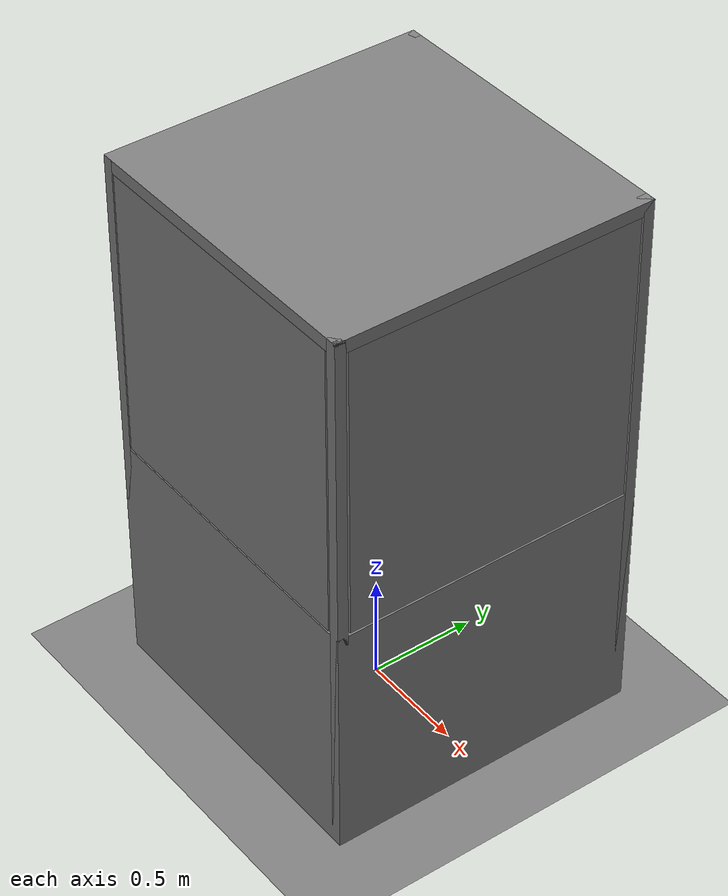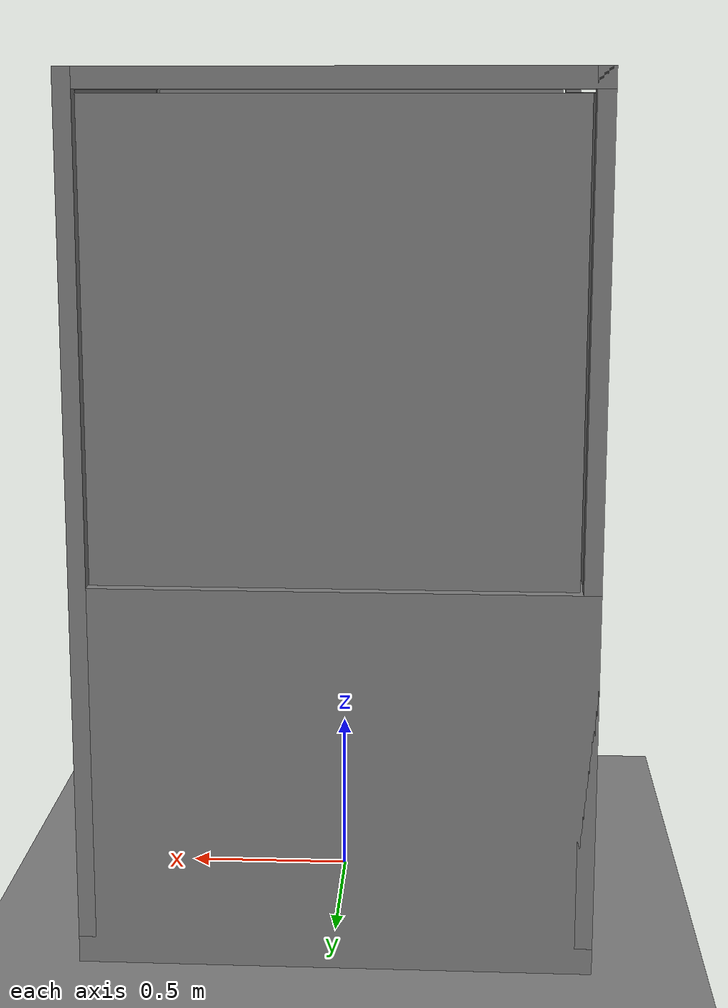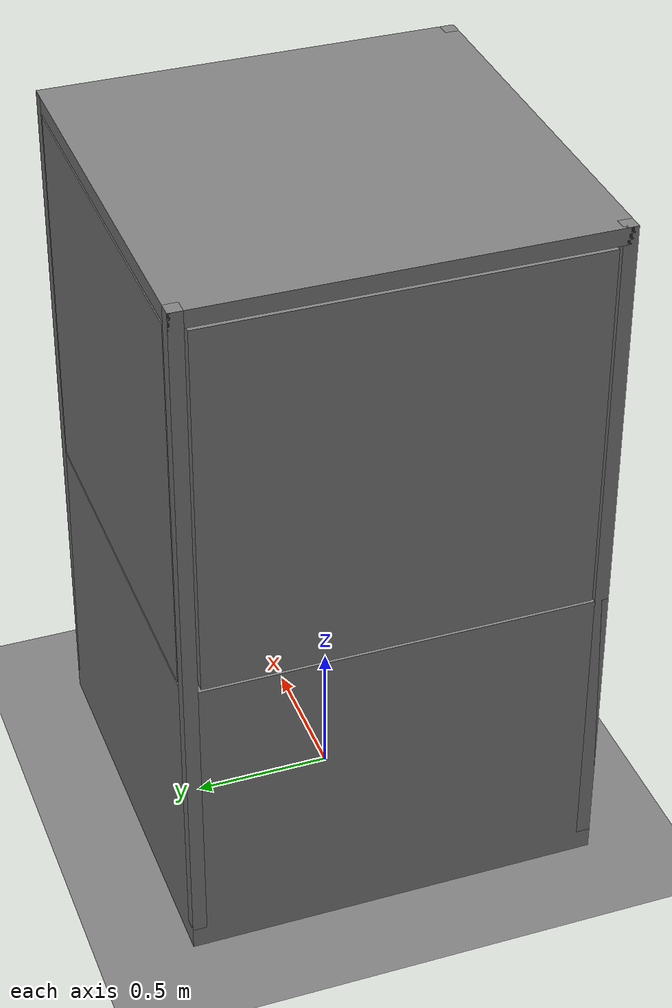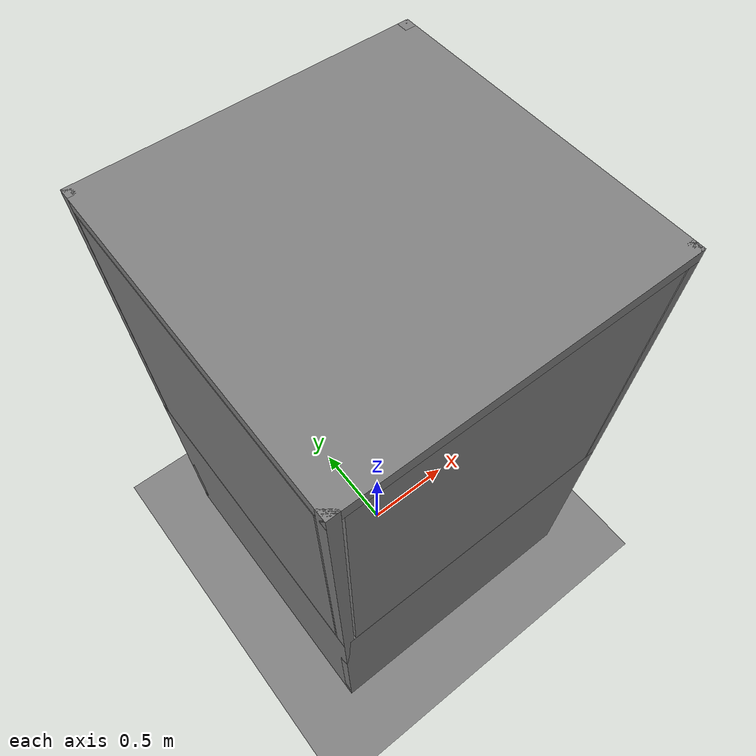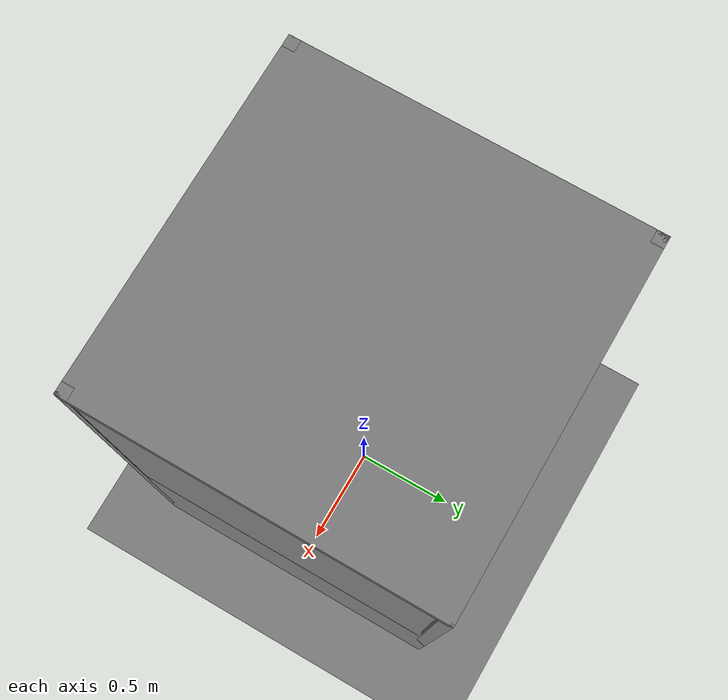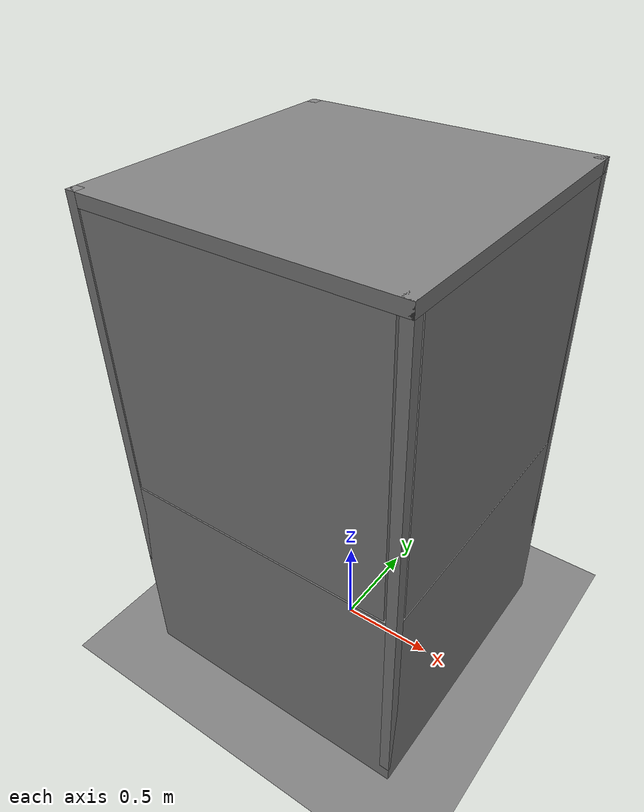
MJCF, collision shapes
<mujoco model="aic_world">
  <compiler angle="radian" />

  <option gravity="0 0 -9.8" magnetic="5.5645e-06 2.28758e-05 -4.23884e-05" />

  <visual>
    <headlight ambient="0.05 0.05 0.05" diffuse="0.15 0.15 0.15" specular="0.1 0.1 0.1" />
  </visual>

  <default>
    <default class="world_default" />
    <default class="cable_default">
      <joint damping="2.0" armature="0.1" />
    </default>
  </default>

  <extension>
    <plugin plugin="mujoco.elasticity.cable">
      <instance name="composite">
        <config key="twist" value="1e2" />
        <config key="bend" value="4e1" />
      </instance>
    </plugin>
  </extension>

  <asset>
    <texture type="2d" colorspace="linear" name="texture_3cfd66d2e9d880eae3d6e7923ec9058d874bf1526844466939fc4924d98ff9b9_floor_visual_Plane" file="meshes/floor_visual__Plane.png" />
    <texture type="2d" colorspace="linear" name="texture_64e61b65f045552ba26a6ad52be1054f951feb31fe90869f7d202e8045dc22e6_sc_plug_visual_merged_0" file="meshes/sc_plug_visual__merged_0.png" />
    <texture type="2d" colorspace="linear" name="texture_49bcaba7dbdb7d3142691518ed2731a8b4b7bed5e5dd55a10defd679994a8fb5_lc_plug_visual_merged_0" file="meshes/lc_plug_visual__merged_0.png" />
    <texture type="2d" colorspace="linear" name="texture_4e46908e7d54f1b9f4b24d75a3e64fbc26cc8ba53b13e641c435298d0fee7478_sfp_module_visual_Body.005" file="meshes/sfp_module_visual__Body.005.png" />
    <texture type="2d" colorspace="linear" name="texture_4e46908e7d54f1b9f4b24d75a3e64fbc26cc8ba53b13e641c435298d0fee7478_sfp_module_visual_Body.005_1" file="meshes/sfp_module_visual__Body.005_1.png" />
    <texture type="2d" colorspace="linear" name="texture_d1b04fad6d29ff6a8ddafafe01f51e4115506104619cde448122a63197c4db36_sc_port_visual_FOA-005A_3D_v1.006" file="meshes/sc_port_visual__FOA-005A_3D_v1.006.png" />
    <texture type="2d" colorspace="linear" name="texture_11ca22ec5bc4bf3254ee393918b3b659d90ac573596f8ddff3835610b068bcee_nic_card_visual_merged_0" file="meshes/nic_card_visual__merged_0.png" />
    <texture type="2d" colorspace="linear" name="texture_11ca22ec5bc4bf3254ee393918b3b659d90ac573596f8ddff3835610b068bcee_nic_card_visual_merged_1" file="meshes/nic_card_visual__merged_1.png" />
    <material name="material_d3a88c2c9b67693c0b83a473c736f84a8297c1036d4dce4e6c4e840aec16baa7_enclosure_visual_V1014952.001" class="world_default" shininess="30" rgba="0.290196 0.290196 0.290196 1" />
    <material name="material_d3a88c2c9b67693c0b83a473c736f84a8297c1036d4dce4e6c4e840aec16baa7_enclosure_visual_V1014952.001_1" class="world_default" shininess="30" rgba="0.129412 0.129412 0.133333 1" />
    <material name="material_d3a88c2c9b67693c0b83a473c736f84a8297c1036d4dce4e6c4e840aec16baa7_light_visual_Plane.001" class="world_default" shininess="30" rgba="0.5 0.5 0.5 1" />
    <material name="material_3cfd66d2e9d880eae3d6e7923ec9058d874bf1526844466939fc4924d98ff9b9_floor_visual_Plane" class="world_default" texture="texture_3cfd66d2e9d880eae3d6e7923ec9058d874bf1526844466939fc4924d98ff9b9_floor_visual_Plane" shininess="30" rgba="0.5 0.5 0.5 1" />
    <material name="material_3cfd66d2e9d880eae3d6e7923ec9058d874bf1526844466939fc4924d98ff9b9_walls_visual_Curve.001" class="world_default" shininess="30" rgba="0.0196078 0.0196078 0.0196078 1" />
    <material name="material_3cfd66d2e9d880eae3d6e7923ec9058d874bf1526844466939fc4924d98ff9b9_walls_visual_merged_1" class="world_default" shininess="30" rgba="0.262745 0.262745 0.262745 1" />
    <material name="material_3cfd66d2e9d880eae3d6e7923ec9058d874bf1526844466939fc4924d98ff9b9_walls_visual_Plane.003_1" class="world_default" shininess="30" rgba="0.8 0.8 0.8 1" />
    <material name="material_3cfd66d2e9d880eae3d6e7923ec9058d874bf1526844466939fc4924d98ff9b9_walls_visual_Plane.002" class="world_default" shininess="30" rgba="0.207843 0.207843 0.207843 1" />
    <material name="material_64e61b65f045552ba26a6ad52be1054f951feb31fe90869f7d202e8045dc22e6_sc_plug_visual_merged_0" class="world_default" texture="texture_64e61b65f045552ba26a6ad52be1054f951feb31fe90869f7d202e8045dc22e6_sc_plug_visual_merged_0" shininess="30" rgba="0.5 0.5 0.5 1" />
    <material name="material_49bcaba7dbdb7d3142691518ed2731a8b4b7bed5e5dd55a10defd679994a8fb5_lc_plug_visual_merged_0" class="world_default" texture="texture_49bcaba7dbdb7d3142691518ed2731a8b4b7bed5e5dd55a10defd679994a8fb5_lc_plug_visual_merged_0" shininess="30" rgba="0.5 0.5 0.5 1" />
    <material name="material_4e46908e7d54f1b9f4b24d75a3e64fbc26cc8ba53b13e641c435298d0fee7478_sfp_module_visual_Body.005" class="world_default" texture="texture_4e46908e7d54f1b9f4b24d75a3e64fbc26cc8ba53b13e641c435298d0fee7478_sfp_module_visual_Body.005" shininess="30" rgba="0.5 0.5 0.5 1" />
    <material name="material_4e46908e7d54f1b9f4b24d75a3e64fbc26cc8ba53b13e641c435298d0fee7478_sfp_module_visual_Body.005_1" class="world_default" texture="texture_4e46908e7d54f1b9f4b24d75a3e64fbc26cc8ba53b13e641c435298d0fee7478_sfp_module_visual_Body.005_1" shininess="30" rgba="0.5 0.5 0.5 1" />
    <material name="material_5d10b2ccf9ef8263b111a7e55a6b5dcf9c2d68105c468901e801678ea93c82ec_base_visual_ISO_4762_-_M3_x_8.019" class="world_default" shininess="30" rgba="0.0352941 0.0352941 0.0313726 1" />
    <material name="material_5d10b2ccf9ef8263b111a7e55a6b5dcf9c2d68105c468901e801678ea93c82ec_base_visual_ISO_4762_-_M3_x_8.019_1" class="world_default" shininess="30" rgba="0.0313726 0.0313726 0.0313726 1" />
    <material name="material_5d10b2ccf9ef8263b111a7e55a6b5dcf9c2d68105c468901e801678ea93c82ec_base_visual_ISO_4762_-_M3_x_8.019_2" class="world_default" shininess="30" rgba="0.215686 0 0.215686 1" />
    <material name="material_39fd7e74cdb4d52c9d01c8de21359f749ea1bfe7a1f2136fc19f2d9a98855c02_sc_mount_visual_ISO_4762_-_M2_x_8.040" class="world_default" shininess="30" rgba="0.0352941 0.0352941 0.0313726 1" />
    <material name="material_39fd7e74cdb4d52c9d01c8de21359f749ea1bfe7a1f2136fc19f2d9a98855c02_sc_mount_visual_ISO_4762_-_M2_x_8.040_1" class="world_default" shininess="30" rgba="0.0313726 0.0313726 0.0313726 1" />
    <material name="material_a868460f64b676f0077827b48115680161bdef32d67cb4691cdc6946bb896345_sfp_mount_visual_ISO_4762_-_M2_x_8.011" class="world_default" shininess="30" rgba="0.0313726 0.0313726 0.0313726 1" />
    <material name="material_a868460f64b676f0077827b48115680161bdef32d67cb4691cdc6946bb896345_sfp_mount_visual_ISO_4762_-_M2_x_8.011_1" class="world_default" shininess="30" rgba="0.0352941 0.0352941 0.0313726 1" />
    <material name="material_d1b04fad6d29ff6a8ddafafe01f51e4115506104619cde448122a63197c4db36_sc_port_visual_FOA-005A_3D_v1.006" class="world_default" texture="texture_d1b04fad6d29ff6a8ddafafe01f51e4115506104619cde448122a63197c4db36_sc_port_visual_FOA-005A_3D_v1.006" shininess="30" rgba="0.5 0.5 0.5 1" />
    <material name="material_d1b04fad6d29ff6a8ddafafe01f51e4115506104619cde448122a63197c4db36_sc_port_visual_merged_1" class="world_default" shininess="30" rgba="0.0352941 0.0352941 0.0313726 1" />
    <material name="material_d1b04fad6d29ff6a8ddafafe01f51e4115506104619cde448122a63197c4db36_sc_port_visual_merged_2" class="world_default" shininess="30" rgba="0.0313726 0.0313726 0.0313726 1" />
    <material name="material_11ca22ec5bc4bf3254ee393918b3b659d90ac573596f8ddff3835610b068bcee_nic_card_mount_visual_ISO_4762_-_M2_x_8.054" class="world_default" shininess="30" rgba="0.0352941 0.0352941 0.0313726 1" />
    <material name="material_11ca22ec5bc4bf3254ee393918b3b659d90ac573596f8ddff3835610b068bcee_nic_card_mount_visual_ISO_4762_-_M2_x_8.054_1" class="world_default" shininess="30" rgba="0.0313726 0.0313726 0.0313726 1" />
    <material name="material_11ca22ec5bc4bf3254ee393918b3b659d90ac573596f8ddff3835610b068bcee_nic_card_visual_merged_0" class="world_default" texture="texture_11ca22ec5bc4bf3254ee393918b3b659d90ac573596f8ddff3835610b068bcee_nic_card_visual_merged_0" shininess="30" rgba="0.5 0.5 0.5 1" />
    <material name="material_11ca22ec5bc4bf3254ee393918b3b659d90ac573596f8ddff3835610b068bcee_nic_card_visual_merged_1" class="world_default" texture="texture_11ca22ec5bc4bf3254ee393918b3b659d90ac573596f8ddff3835610b068bcee_nic_card_visual_merged_1" shininess="30" rgba="0.5 0.5 0.5 1" />
    <material name="material_11ca22ec5bc4bf3254ee393918b3b659d90ac573596f8ddff3835610b068bcee_nic_card_visual_Plane.029" class="world_default" shininess="30" rgba="0.0235294 0.0392157 0.0117647 1" />
    <material name="material_11ca22ec5bc4bf3254ee393918b3b659d90ac573596f8ddff3835610b068bcee_nic_card_visual_Cube.007" class="world_default" shininess="30" rgba="0 0 0 1" />
    <mesh name="d3a88c2c9b67693c0b83a473c736f84a8297c1036d4dce4e6c4e840aec16baa7_enclosure_visual_V1014952.001" class="world_default" content_type="model/obj" file="meshes/enclosure_visual__V1014952.001.obj" inertia="shell" />
    <mesh name="d3a88c2c9b67693c0b83a473c736f84a8297c1036d4dce4e6c4e840aec16baa7_enclosure_visual_V1014952.001_1" class="world_default" content_type="model/obj" file="meshes/enclosure_visual__V1014952.001_1.obj" inertia="shell" />
    <mesh name="d3a88c2c9b67693c0b83a473c736f84a8297c1036d4dce4e6c4e840aec16baa7_light_visual_Plane.001" class="world_default" content_type="model/obj" file="meshes/light_visual__Plane.001.obj" inertia="shell" />
    <mesh name="3cfd66d2e9d880eae3d6e7923ec9058d874bf1526844466939fc4924d98ff9b9_floor_visual_Plane" class="world_default" content_type="model/obj" file="meshes/floor_visual__Plane.obj" inertia="shell" />
    <mesh name="3cfd66d2e9d880eae3d6e7923ec9058d874bf1526844466939fc4924d98ff9b9_walls_visual_Curve.001" class="world_default" content_type="model/obj" file="meshes/walls_visual__Curve.001.obj" inertia="shell" />
    <mesh name="3cfd66d2e9d880eae3d6e7923ec9058d874bf1526844466939fc4924d98ff9b9_walls_visual_merged_1" class="world_default" content_type="model/obj" file="meshes/walls_visual__merged_1.obj" inertia="shell" />
    <mesh name="3cfd66d2e9d880eae3d6e7923ec9058d874bf1526844466939fc4924d98ff9b9_walls_visual_Plane.003_1" class="world_default" content_type="model/obj" file="meshes/walls_visual__Plane.003_1.obj" inertia="shell" />
    <mesh name="3cfd66d2e9d880eae3d6e7923ec9058d874bf1526844466939fc4924d98ff9b9_walls_visual_Plane.002" class="world_default" content_type="model/obj" file="meshes/walls_visual__Plane.002.obj" inertia="shell" />
    <mesh name="64e61b65f045552ba26a6ad52be1054f951feb31fe90869f7d202e8045dc22e6_sc_plug_visual_merged_0" class="world_default" content_type="model/obj" file="meshes/sc_plug_visual__merged_0.obj" inertia="shell" />
    <mesh name="49bcaba7dbdb7d3142691518ed2731a8b4b7bed5e5dd55a10defd679994a8fb5_lc_plug_visual_merged_0" class="world_default" content_type="model/obj" file="meshes/lc_plug_visual__merged_0.obj" inertia="shell" />
    <mesh name="4e46908e7d54f1b9f4b24d75a3e64fbc26cc8ba53b13e641c435298d0fee7478_sfp_module_visual_Body.005" class="world_default" content_type="model/obj" file="meshes/sfp_module_visual__Body.005.obj" inertia="shell" />
    <mesh name="4e46908e7d54f1b9f4b24d75a3e64fbc26cc8ba53b13e641c435298d0fee7478_sfp_module_visual_Body.005_1" class="world_default" content_type="model/obj" file="meshes/sfp_module_visual__Body.005_1.obj" inertia="shell" />
    <mesh name="5d10b2ccf9ef8263b111a7e55a6b5dcf9c2d68105c468901e801678ea93c82ec_base_visual_ISO_4762_-_M3_x_8.019" class="world_default" content_type="model/obj" file="meshes/base_visual__ISO_4762_-_M3_x_8.019.obj" inertia="shell" />
    <mesh name="5d10b2ccf9ef8263b111a7e55a6b5dcf9c2d68105c468901e801678ea93c82ec_base_visual_ISO_4762_-_M3_x_8.019_1" class="world_default" content_type="model/obj" file="meshes/base_visual__ISO_4762_-_M3_x_8.019_1.obj" inertia="shell" />
    <mesh name="5d10b2ccf9ef8263b111a7e55a6b5dcf9c2d68105c468901e801678ea93c82ec_base_visual_ISO_4762_-_M3_x_8.019_2" class="world_default" content_type="model/obj" file="meshes/base_visual__ISO_4762_-_M3_x_8.019_2.obj" inertia="shell" />
    <mesh name="39fd7e74cdb4d52c9d01c8de21359f749ea1bfe7a1f2136fc19f2d9a98855c02_sc_mount_visual_ISO_4762_-_M2_x_8.040" class="world_default" content_type="model/obj" file="meshes/sc_mount_visual__ISO_4762_-_M2_x_8.040.obj" inertia="shell" />
    <mesh name="39fd7e74cdb4d52c9d01c8de21359f749ea1bfe7a1f2136fc19f2d9a98855c02_sc_mount_visual_ISO_4762_-_M2_x_8.040_1" class="world_default" content_type="model/obj" file="meshes/sc_mount_visual__ISO_4762_-_M2_x_8.040_1.obj" inertia="shell" />
    <mesh name="a868460f64b676f0077827b48115680161bdef32d67cb4691cdc6946bb896345_sfp_mount_visual_ISO_4762_-_M2_x_8.011" class="world_default" content_type="model/obj" file="meshes/sfp_mount_visual__ISO_4762_-_M2_x_8.011.obj" inertia="shell" />
    <mesh name="a868460f64b676f0077827b48115680161bdef32d67cb4691cdc6946bb896345_sfp_mount_visual_ISO_4762_-_M2_x_8.011_1" class="world_default" content_type="model/obj" file="meshes/sfp_mount_visual__ISO_4762_-_M2_x_8.011_1.obj" inertia="shell" />
    <mesh name="d1b04fad6d29ff6a8ddafafe01f51e4115506104619cde448122a63197c4db36_sc_port_visual_FOA-005A_3D_v1.006" class="world_default" content_type="model/obj" file="meshes/sc_port_visual__FOA-005A_3D_v1.006.obj" inertia="shell" />
    <mesh name="d1b04fad6d29ff6a8ddafafe01f51e4115506104619cde448122a63197c4db36_sc_port_visual_merged_1" class="world_default" content_type="model/obj" file="meshes/sc_port_visual__merged_1.obj" inertia="shell" />
    <mesh name="d1b04fad6d29ff6a8ddafafe01f51e4115506104619cde448122a63197c4db36_sc_port_visual_merged_2" class="world_default" content_type="model/obj" file="meshes/sc_port_visual__merged_2.obj" inertia="shell" />
    <mesh name="11ca22ec5bc4bf3254ee393918b3b659d90ac573596f8ddff3835610b068bcee_nic_card_mount_visual_ISO_4762_-_M2_x_8.054" class="world_default" content_type="model/obj" file="meshes/nic_card_mount_visual__ISO_4762_-_M2_x_8.054.obj" inertia="shell" />
    <mesh name="11ca22ec5bc4bf3254ee393918b3b659d90ac573596f8ddff3835610b068bcee_nic_card_mount_visual_ISO_4762_-_M2_x_8.054_1" class="world_default" content_type="model/obj" file="meshes/nic_card_mount_visual__ISO_4762_-_M2_x_8.054_1.obj" inertia="shell" />
    <mesh name="11ca22ec5bc4bf3254ee393918b3b659d90ac573596f8ddff3835610b068bcee_nic_card_visual_merged_0" class="world_default" content_type="model/obj" file="meshes/nic_card_visual__merged_0.obj" inertia="shell" />
    <mesh name="11ca22ec5bc4bf3254ee393918b3b659d90ac573596f8ddff3835610b068bcee_nic_card_visual_merged_1" class="world_default" content_type="model/obj" file="meshes/nic_card_visual__merged_1.obj" inertia="shell" />
    <mesh name="11ca22ec5bc4bf3254ee393918b3b659d90ac573596f8ddff3835610b068bcee_nic_card_visual_Plane.029" class="world_default" content_type="model/obj" file="meshes/nic_card_visual__Plane.029.obj" inertia="shell" />
    <mesh name="11ca22ec5bc4bf3254ee393918b3b659d90ac573596f8ddff3835610b068bcee_nic_card_visual_Cube.007" class="world_default" content_type="model/obj" file="meshes/nic_card_visual__Cube.007.obj" inertia="shell" />
  </asset>

  <worldbody>
    <light name="enclosure_light" class="world_default" pos="0 0 2.5" dir="0 0 -1" intensity="0.4" range="2" attenuation="1 0.01 0.001" cutoff="114.592" exponent="0.993023" diffuse="1 1 1" specular="0.1 0.1 0.1" />
    <light name="ceiling_01" class="world_default" pos="2 2 6" dir="0 0 -1" intensity="2" range="9" castshadow="false" attenuation="1 0.01 0.001" cutoff="360" diffuse="1 1 1" specular="0.1 0.1 0.1" />
    <light name="ceiling_02" class="world_default" pos="-2 -2 6" dir="0 0 -1" intensity="2" range="9" castshadow="false" attenuation="1 0.01 0.001" cutoff="360" diffuse="1 1 1" specular="0.1 0.1 0.1" />
    <body name="enclosure_link">
      <inertial pos="0 0 0" mass="1" diaginertia="1 1 1" />
      <geom name="v1015026001_collider_box" class="world_default" size="0.75 0.569492 0.75" pos="-0.010998 0.009283 0.569706" quat="-1.22475e-07 1.22474e-07 -0.707107 -0.707107" type="box" group="3" contype="0" conaffinity="0" />
      <geom name="v1015028001_collider_box" class="world_default" size="0.0254 0.0254 1.25" pos="0.713602 0.733883 1.3292" quat="1.73205e-07 0 0 -1" type="box" group="3" contype="0" conaffinity="0" />
      <geom name="v1015013001_collider_box" class="world_default" size="0.0304 0.75 0.75" pos="-0.010998 0.009283 2.5488" quat="0.707107 0 -0.707107 0" type="box" group="3" contype="0" conaffinity="0" />
      <geom name="v1015027_collider_box" class="world_default" size="0.0254 0.0254 1.25" pos="-0.735598 0.733883 1.3292" quat="1.73205e-07 0 0 -1" type="box" group="3" contype="0" conaffinity="0" />
      <geom name="v1015029_collider_box" class="world_default" size="0.0254 0.0254 1.25" pos="-0.735598 -0.715317 1.3292" quat="0 1.73205e-07 -1 -1.73205e-07" type="box" group="3" contype="0" conaffinity="0" />
      <geom name="v1015030_collider_box" class="world_default" size="0.0254 0.0254 1.25" pos="0.713602 -0.715317 1.3292" quat="1.73205e-07 0 0 -1" type="box" group="3" contype="0" conaffinity="0" />
      <geom name="enclosure_visual" class="world_default" type="mesh" contype="0" conaffinity="0" material="material_d3a88c2c9b67693c0b83a473c736f84a8297c1036d4dce4e6c4e840aec16baa7_enclosure_visual_V1014952.001" mesh="d3a88c2c9b67693c0b83a473c736f84a8297c1036d4dce4e6c4e840aec16baa7_enclosure_visual_V1014952.001" />
      <geom name="enclosure_visual_0" class="world_default" type="mesh" contype="0" conaffinity="0" material="material_d3a88c2c9b67693c0b83a473c736f84a8297c1036d4dce4e6c4e840aec16baa7_enclosure_visual_V1014952.001_1" mesh="d3a88c2c9b67693c0b83a473c736f84a8297c1036d4dce4e6c4e840aec16baa7_enclosure_visual_V1014952.001_1" />
      <geom name="light_visual" class="world_default" type="mesh" contype="0" conaffinity="0" material="material_d3a88c2c9b67693c0b83a473c736f84a8297c1036d4dce4e6c4e840aec16baa7_light_visual_Plane.001" mesh="d3a88c2c9b67693c0b83a473c736f84a8297c1036d4dce4e6c4e840aec16baa7_light_visual_Plane.001" />
    </body>
    <body name="enclosure_walls_link">
      <inertial pos="0 0 0" mass="1" diaginertia="1 1 1" />
      <geom name="v1015062006_collider_box" class="world_default" size="0.0250005 0.6796 0.6892" pos="-0.010998 0.734284 1.8288" quat="0.5 0.5 -0.5 -0.5" type="box" group="3" contype="0" conaffinity="0" />
      <geom name="v1015062005_collider_box" class="world_default" size="0.6892 0.6796 0.025" pos="-0.735998 0.009283 1.8288" quat="0.5 0.5 -0.5 -0.5" type="box" group="3" contype="0" conaffinity="0" />
      <geom name="v1015062007_collider_box" class="world_default" size="0.025 0.6846 0.6892" pos="-0.010998 -0.715717 1.8338" quat="0.5 0.5 -0.5 -0.5" type="box" group="3" contype="0" conaffinity="0" />
      <geom name="v1015062008_collider_box" class="world_default" size="0.6892 0.6846 0.025" pos="0.714002 0.009283 1.8338" quat="0.5 0.5 -0.5 -0.5" type="box" group="3" contype="0" conaffinity="0" />
    </body>
    <body name="floor_link">
      <inertial pos="0 0 0" mass="1" diaginertia="1 1 1" />
      <geom name="floor_cylinder" class="world_default" size="5 5 1" type="plane" group="3" />
      <geom name="floor_visual" class="world_default" type="mesh" contype="0" conaffinity="0" material="material_3cfd66d2e9d880eae3d6e7923ec9058d874bf1526844466939fc4924d98ff9b9_floor_visual_Plane" mesh="3cfd66d2e9d880eae3d6e7923ec9058d874bf1526844466939fc4924d98ff9b9_floor_visual_Plane" />
      <geom name="walls_visual" class="world_default" type="mesh" contype="0" conaffinity="0" material="material_3cfd66d2e9d880eae3d6e7923ec9058d874bf1526844466939fc4924d98ff9b9_walls_visual_Curve.001" mesh="3cfd66d2e9d880eae3d6e7923ec9058d874bf1526844466939fc4924d98ff9b9_walls_visual_Curve.001" />
      <geom name="walls_visual_0" class="world_default" type="mesh" contype="0" conaffinity="0" material="material_3cfd66d2e9d880eae3d6e7923ec9058d874bf1526844466939fc4924d98ff9b9_walls_visual_merged_1" mesh="3cfd66d2e9d880eae3d6e7923ec9058d874bf1526844466939fc4924d98ff9b9_walls_visual_merged_1" />
      <geom name="walls_visual_1" class="world_default" type="mesh" contype="0" conaffinity="0" material="material_3cfd66d2e9d880eae3d6e7923ec9058d874bf1526844466939fc4924d98ff9b9_walls_visual_Plane.003_1" mesh="3cfd66d2e9d880eae3d6e7923ec9058d874bf1526844466939fc4924d98ff9b9_walls_visual_Plane.003_1" />
      <geom name="walls_visual_2" class="world_default" type="mesh" contype="0" conaffinity="0" material="material_3cfd66d2e9d880eae3d6e7923ec9058d874bf1526844466939fc4924d98ff9b9_walls_visual_Plane.002" mesh="3cfd66d2e9d880eae3d6e7923ec9058d874bf1526844466939fc4924d98ff9b9_walls_visual_Plane.002" />
    </body>
    <body name="task_board_base_link" pos="0.15 -0.2 1.14" quat="4.63151e-05 -5.13589e-10 -1.29702e-09 1">
      <inertial pos="0.00298077 -0.00408654 0.000423077" quat="0.331065 0.606837 -0.300201 0.657285" mass="5.2" diaginertia="0.105451 0.105385 0.102065" />
      <geom name="task_board_base_link_fixed_joint_lump__v1015083001_collider_box_left_collision" class="world_default" size="0.15 0.114 0.0045" pos="0 -0.1 0.0075" type="box" group="3" />
      <geom name="task_board_base_link_fixed_joint_lump__v1015083001_collider_right_collision_1" class="world_default" size="0.15 0.0635 0.0045" pos="0 0.149 0.0075" type="box" group="3" />
      <geom name="task_board_base_link_fixed_joint_lump__v1015083001_collider_mid_collision_2" class="world_default" size="0.07 0.006 0.0045" pos="-0.075 0.05 0.0075" type="box" group="3" />
      <geom name="task_board_base_link_fixed_joint_lump__v1015083001_collider_bottom_collision_3" class="world_default" size="0.0825 0.2125 0.0045" pos="0.068 0 0.0075" type="box" group="3" />
      <geom name="task_board_base_link_fixed_joint_lump__v1015083001_collider_top_collision_4" class="world_default" size="0.0075 0.2125 0.0045" pos="-0.143 0 0.0075" type="box" group="3" />
      <geom name="task_board_base_link_fixed_joint_lump__v1015079011_collider_box_collision_5" class="world_default" size="0.0088735 0.007 0.0025" pos="0.139002 -0.10625 0.0145" type="box" group="3" />
      <geom name="task_board_base_link_fixed_joint_lump__v1015079011_collider_box.001_collision_6" class="world_default" size="0.012906 0.0016 0.0068995" pos="0.122568 -0.11165 0.025451" quat="0.92388 0 0.382683 0" type="box" group="3" />
      <geom name="task_board_base_link_fixed_joint_lump__v1015079011_collider_box.002_collision_7" class="world_default" size="0.012906 0.00115 0.0068995" pos="0.122568 -0.1004 0.025451" quat="0.92388 0 0.382683 0" type="box" group="3" />
      <geom name="task_board_base_link_fixed_joint_lump__v1015079011_collider_box003_collider_box_collision_8" class="world_default" size="0.001 0.007 0.0068995" pos="0.11415 -0.10625 0.03387" quat="0.92388 0 0.382683 0" type="box" group="3" />
      <geom name="task_board_base_link_fixed_joint_lump__v1015079011_collider_box003_collider_box.001_collision_9" class="world_default" size="0.000921 0.007 0.0068995" pos="0.131064 -0.10625 0.016956" quat="0.92388 0 0.382683 0" type="box" group="3" />
      <geom name="task_board_base_link_fixed_joint_lump__v1015079011_collider_box003_collider_box.002_collision_10" class="world_default" size="0.0124785 0.007 0.0025" pos="0.109506 -0.10625 0.0145" type="box" group="3" />
      <geom name="task_board_base_link_fixed_joint_lump__v1015079011_collider_box003_collider_box.003_collision_11" class="world_default" size="0.012906 0.007 0.0006195" pos="0.117774 -0.10625 0.020656" quat="0.92388 0 0.382683 0" type="box" group="3" />
      <geom name="task_board_base_link_fixed_joint_lump__v1015079011_collider_box003_collider_box.004_collision_12" class="world_default" size="0.0011105 0.007 0.0046245" pos="0.135389 -0.10625 0.016624" type="box" group="3" />
      <geom name="task_board_base_link_fixed_joint_lump__v1015079011_collider_box003_collider_box004_collider_box_collision_13" class="world_default" size="0.001045 0.007 0.008711" pos="0.109545 -0.10625 0.020711" type="box" group="3" />
      <geom name="task_board_base_link_fixed_joint_lump__iso_4762_m2_x_8072_collider_box_collision_14" class="world_default" size="0.0147285 0.008875 0.0025" pos="0.088272 -0.10625 0.0125" type="box" group="3" />
      <geom name="task_board_base_link_fixed_joint_lump__iso_4762_m2_x_8072_collider_box_001_collision_15" class="world_default" size="0.0192665 0.008875 0.000864" pos="0.071366 -0.10625 0.027144" quat="0.92388 0 -0.382683 0" type="box" group="3" />
      <geom name="task_board_base_link_fixed_joint_lump__iso_4762_m2_x_8072_collider_box_002_collision_16" class="world_default" size="0.0137425 0.008875 0.001844" pos="0.083636 -0.10625 0.022684" quat="0.92388 0 -0.382683 0" type="box" group="3" />
      <geom name="task_board_base_link_fixed_joint_lump__iso_4762_m2_x_8072_collider_box_003_collision_17" class="world_default" size="0.0180555 0.0011525 0.005478" pos="0.076242 -0.098527 0.023979" quat="0.92388 0 -0.382683 0" type="box" group="3" />
      <geom name="task_board_base_link_fixed_joint_lump__iso_4762_m2_x_8072_collider_box_004_collision_18" class="world_default" size="0.0180555 0.0009375 0.005815" pos="0.076003 -0.114188 0.024217" quat="0.92388 0 -0.382683 0" type="box" group="3" />
      <geom name="task_board_base_link_fixed_joint_lump__iso_4762_m2_x_8072_collider_box_005_collision_19" class="world_default" size="0.002532 0.008875 0.005815" pos="0.065017 -0.10625 0.013231" quat="0.92388 0 -0.382683 0" type="box" group="3" />
      <geom name="task_board_base_link_fixed_joint_lump__iso_4762_m2_x_8072_collider_box_006_collision_20" class="world_default" size="0.0071855 0.008875 0.0025" pos="0.0592 -0.10625 0.0125" type="box" group="3" />
      <geom name="task_board_base_link_fixed_joint_lump__iso_4762_m2_x_8072_collider_box_007_collision_21" class="world_default" size="0.0024465 0.008875 0.0083775" pos="0.091553 -0.10625 0.021771" type="box" group="3" />
      <geom name="task_board_base_link_fixed_joint_lump__base_visual_visual" class="world_default" type="mesh" contype="0" conaffinity="0" material="material_5d10b2ccf9ef8263b111a7e55a6b5dcf9c2d68105c468901e801678ea93c82ec_base_visual_ISO_4762_-_M3_x_8.019" mesh="5d10b2ccf9ef8263b111a7e55a6b5dcf9c2d68105c468901e801678ea93c82ec_base_visual_ISO_4762_-_M3_x_8.019" />
      <geom name="task_board_base_link_fixed_joint_lump__base_visual_visual_0" class="world_default" type="mesh" contype="0" conaffinity="0" material="material_5d10b2ccf9ef8263b111a7e55a6b5dcf9c2d68105c468901e801678ea93c82ec_base_visual_ISO_4762_-_M3_x_8.019_1" mesh="5d10b2ccf9ef8263b111a7e55a6b5dcf9c2d68105c468901e801678ea93c82ec_base_visual_ISO_4762_-_M3_x_8.019_1" />
      <geom name="task_board_base_link_fixed_joint_lump__base_visual_visual_1" class="world_default" type="mesh" contype="0" conaffinity="0" material="material_5d10b2ccf9ef8263b111a7e55a6b5dcf9c2d68105c468901e801678ea93c82ec_base_visual_ISO_4762_-_M3_x_8.019_2" mesh="5d10b2ccf9ef8263b111a7e55a6b5dcf9c2d68105c468901e801678ea93c82ec_base_visual_ISO_4762_-_M3_x_8.019_2" />
      <geom name="task_board_base_link_fixed_joint_lump__sc_mount_visual_visual_1" class="world_default" pos="0.1 -0.10625 0.012" quat="1 0 0 0" type="mesh" contype="0" conaffinity="0" material="material_39fd7e74cdb4d52c9d01c8de21359f749ea1bfe7a1f2136fc19f2d9a98855c02_sc_mount_visual_ISO_4762_-_M2_x_8.040" mesh="39fd7e74cdb4d52c9d01c8de21359f749ea1bfe7a1f2136fc19f2d9a98855c02_sc_mount_visual_ISO_4762_-_M2_x_8.040" />
      <geom name="task_board_base_link_fixed_joint_lump__sc_mount_visual_visual_1_0" class="world_default" pos="0.1 -0.10625 0.012" quat="1 0 0 0" type="mesh" contype="0" conaffinity="0" material="material_39fd7e74cdb4d52c9d01c8de21359f749ea1bfe7a1f2136fc19f2d9a98855c02_sc_mount_visual_ISO_4762_-_M2_x_8.040_1" mesh="39fd7e74cdb4d52c9d01c8de21359f749ea1bfe7a1f2136fc19f2d9a98855c02_sc_mount_visual_ISO_4762_-_M2_x_8.040_1" />
      <geom name="task_board_base_link_fixed_joint_lump__sfp_mount_visual_visual_2" class="world_default" pos="0.055 -0.10625 0.01" quat="1 0 0 0" type="mesh" contype="0" conaffinity="0" material="material_a868460f64b676f0077827b48115680161bdef32d67cb4691cdc6946bb896345_sfp_mount_visual_ISO_4762_-_M2_x_8.011" mesh="a868460f64b676f0077827b48115680161bdef32d67cb4691cdc6946bb896345_sfp_mount_visual_ISO_4762_-_M2_x_8.011" />
      <geom name="task_board_base_link_fixed_joint_lump__sfp_mount_visual_visual_2_0" class="world_default" pos="0.055 -0.10625 0.01" quat="1 0 0 0" type="mesh" contype="0" conaffinity="0" material="material_a868460f64b676f0077827b48115680161bdef32d67cb4691cdc6946bb896345_sfp_mount_visual_ISO_4762_-_M2_x_8.011_1" mesh="a868460f64b676f0077827b48115680161bdef32d67cb4691cdc6946bb896345_sfp_mount_visual_ISO_4762_-_M2_x_8.011_1" />
      <body name="sc_port_0::sc_port_link" pos="-0.075 0.0295 0.0165" quat="0.500398 0.5 0.499602 0.5">
        <inertial pos="0 -0.000889761 9.34069e-05" quat="-0.00100992 0.707106 -0.00100992 0.707106" mass="0.04" diaginertia="6.36325e-06 5.19944e-06 1.9926e-06" />
        <geom name="cube_collider_box" class="world_default" size="0.0009685 0.013716 0.00465" pos="0.011922 0 0" type="box" group="3" />
        <geom name="cube_collider_box.001" class="world_default" size="0.0128905 0.0054 0.000425" pos="0 0 0.004225" type="box" group="3" />
        <geom name="cube_collider_box_mid" class="world_default" size="0.00515 0.013716 0.000425" pos="0 0 0.004225" type="box" group="3" />
        <geom name="cube_collider_box_mid02" class="world_default" size="0.0025 0.013716 0.000425" pos="0.01 0 0.004225" type="box" group="3" />
        <geom name="cube_collider_box_mid03" class="world_default" size="0.0025 0.013716 0.000425" pos="-0.01 0 0.004225" type="box" group="3" />
        <geom name="cube_collider_box.002" class="world_default" size="0.012825 0.013716 0.000425" pos="0 0 -0.004225" type="box" group="3" />
        <geom name="cube_collider_box.003" class="world_default" size="0.0009685 0.013716 0.00465" pos="-0.011922 0 0" type="box" group="3" />
        <geom name="cube_collider_box.004" class="world_default" size="0.002742 0.001524 0.00465" pos="-0.014683 0 0" type="box" group="3" />
        <geom name="cube_collider_box.005" class="world_default" size="0.002742 0.001524 0.00465" pos="0.014683 0 0" type="box" group="3" />
        <geom name="cube_collider_box.006" class="world_default" size="0.001746 0.013716 0.00465" type="box" group="3" />
        <geom name="v1015120013_collider_box" class="world_default" size="0.006 0.005 0.0015" pos="0.0183 -0.003 0" quat="0.5 -0.5 0.5 0.5" type="box" group="3" contype="0" conaffinity="0" />
        <geom name="v1015120012_collider_box" class="world_default" size="0.006 0.005 0.0015" pos="-0.0183 -0.003 0" quat="0.5 -0.5 -0.5 -0.5" type="box" group="3" contype="0" conaffinity="0" />
        <geom name="iso 4762 - m2 x 6013_collider_cylinder" class="world_default" size="0.0019 0.004" pos="0.0153 -0.0005 0" quat="0.693475 0.693475 0.138174 -0.138174" type="cylinder" group="3" />
        <geom name="iso 4762 - m2 x 6012_collider_cylinder" class="world_default" size="0.0019 0.004" pos="-0.0153 -0.0005 0" quat="0.693475 0.693475 0.138174 -0.138174" type="cylinder" group="3" />
        <geom name="contact_collision_0" class="world_default" size="0.0125 0.001473 0.0045" pos="0 -0.0034 0" quat="1.73205e-07 -1 0 0" type="box" group="3" />
        <geom name="sc_port_visual" class="world_default" type="mesh" contype="0" conaffinity="0" material="material_d1b04fad6d29ff6a8ddafafe01f51e4115506104619cde448122a63197c4db36_sc_port_visual_FOA-005A_3D_v1.006" mesh="d1b04fad6d29ff6a8ddafafe01f51e4115506104619cde448122a63197c4db36_sc_port_visual_FOA-005A_3D_v1.006" />
        <geom name="sc_port_visual_0" class="world_default" type="mesh" contype="0" conaffinity="0" material="material_d1b04fad6d29ff6a8ddafafe01f51e4115506104619cde448122a63197c4db36_sc_port_visual_merged_1" mesh="d1b04fad6d29ff6a8ddafafe01f51e4115506104619cde448122a63197c4db36_sc_port_visual_merged_1" />
        <geom name="sc_port_visual_1" class="world_default" type="mesh" contype="0" conaffinity="0" material="material_d1b04fad6d29ff6a8ddafafe01f51e4115506104619cde448122a63197c4db36_sc_port_visual_merged_2" mesh="d1b04fad6d29ff6a8ddafafe01f51e4115506104619cde448122a63197c4db36_sc_port_visual_merged_2" />
        <site name="sc_port_sensor" class="world_default" pos="0 0 0" />
        <body name="sc_port_base_link" pos="0 -0.002 0" quat="9.38184e-07 9.38187e-07 0.707105 -0.707108">
          <inertial pos="0 0 0" mass="1" diaginertia="1 1 1" />
        </body>
      </body>
      <body name="nic_card_mount_0::nic_card_mount_link" pos="-0.081418 -0.1745 0.012">
        <inertial pos="0 0 0" mass="1" diaginertia="1 1 1" />
        <geom name="v1015085006_collider_box" class="world_default" size="0.0025035 0.036998 0.0775" pos="0.006002 -0.025497 0.0875" quat="0.707107 0 0 0.707107" type="box" group="3" contype="0" conaffinity="0" />
        <geom name="v1015085006_collider_box.001" class="world_default" size="0.0125 0.01075 0.007" pos="-0.0555 -0.0155 0.172" quat="0.707107 0 0 0.707107" type="box" group="3" contype="0" conaffinity="0" />
        <geom name="v1015085006_collider_box.002" class="world_default" size="0.01375 0.002532 0.0515" pos="0.038535 -0.01425 0.1155" quat="0.707107 0 0 0.707107" type="box" group="3" contype="0" conaffinity="0" />
        <geom name="v1015085006_collider_box.003" class="world_default" size="0.010003 0.044894 0.0075" pos="-0.001997 -0.017997 0.0075" quat="0.707107 0 0 0.707107" type="box" group="3" contype="0" conaffinity="0" />
        <geom name="v1015085006_collider_box004_collider_box" class="world_default" size="0.0025005 0.02575 0.0075" pos="-0.042132 -0.025499 0.151803" quat="0.653335 0.270468 0.270468 0.653335" type="box" group="3" contype="0" conaffinity="0" />
        <geom name="v1015085006_collider_box.005" class="world_default" size="0.008 0.01 0.0075" pos="-0.043 -0.0198 0.1665" quat="0.65401 0.268834 0.268834 0.654009" type="box" group="3" contype="0" conaffinity="0" />
        <geom name="v1015085011_collider_box" class="world_default" size="0.0078345 0.031 0.0025" pos="3e-06 -0.004871 0.0025" quat="0.707107 0 0 0.707107" type="box" group="3" contype="0" conaffinity="0" />
        <geom name="nic_card_mount_visual" class="world_default" type="mesh" contype="0" conaffinity="0" material="material_11ca22ec5bc4bf3254ee393918b3b659d90ac573596f8ddff3835610b068bcee_nic_card_mount_visual_ISO_4762_-_M2_x_8.054" mesh="11ca22ec5bc4bf3254ee393918b3b659d90ac573596f8ddff3835610b068bcee_nic_card_mount_visual_ISO_4762_-_M2_x_8.054" />
        <geom name="nic_card_mount_visual_0" class="world_default" type="mesh" contype="0" conaffinity="0" material="material_11ca22ec5bc4bf3254ee393918b3b659d90ac573596f8ddff3835610b068bcee_nic_card_mount_visual_ISO_4762_-_M2_x_8.054_1" mesh="11ca22ec5bc4bf3254ee393918b3b659d90ac573596f8ddff3835610b068bcee_nic_card_mount_visual_ISO_4762_-_M2_x_8.054_1" />
        <body name="nic_card_link" pos="-0.002 -0.01785 0.0899" quat="0.707388 -0.706825 0 0">
          <inertial pos="0.00150732 -0.00850988 0.00340281" quat="0.506895 0.50066 -0.499024 0.493328" mass="0.15" diaginertia="0.000228137 0.000185186 4.94971e-05" />
          <geom name="pcb_collider_box" class="world_default" size="0.028 0.0725 0.0008" pos="0 0 -0.0008" type="box" group="3" />
          <geom name="pcb_collider_box.001" class="world_default" size="0.0345 0.0255 0.0008" pos="0.0065 -0.0025 -0.0008" type="box" group="3" />
          <geom name="pcb_collider_box.002" class="world_default" size="0.032 0.04775 0.0008" pos="0.004 -0.02475 -0.0008" type="box" group="3" />
          <geom name="cylinder015_collider_cylinder" class="world_default" size="0.00268 0.002757" pos="0.03175 -0.063 -0.000988" type="cylinder" group="3" />
          <geom name="cylinder017_collider_cylinder" class="world_default" size="0.00268 0.002759" pos="-0.02225 -0.0675 -0.000986" type="cylinder" group="3" />
          <geom name="pcb001_collider_box" class="world_default" size="0.005125 0.005125 0.0023015" pos="0.015105 0.054161 0.001899" type="box" group="3" />
          <geom name="pcb024_collider_box" class="world_default" size="0.0034 0.0034 0.002162" pos="-0.015586 0.055516 0.001759" type="box" group="3" />
          <geom name="pcb033_collider_box" class="world_default" size="0.021537 0.0208075 0.0011515" pos="-0.002297 0.046302 0.000749" type="box" group="3" />
          <geom name="cube001_collider_box" class="world_default" size="0.002 0.07 0.00575" pos="0.025006 -0.00041 0.00575" type="box" group="3" />
          <geom name="cube001_collider_box.001" class="world_default" size="0.0235 0.026 0.0055" pos="-0.0029 -0.0015 0.008" type="box" group="3" />
          <geom name="10099100-011lfc001_collider_box" class="world_default" size="0.0005495 0.02436 0.0055415" pos="-0.018049 -0.052954 0.00548" quat="0.00675028 0.999977 0 0" type="box" group="3" />
          <geom name="10099100-011lfc001_collider_box.001" class="world_default" size="0.0005625 0.02436 0.0055605" pos="-0.002437 -0.052954 0.005461" quat="0.00675028 0.999977 0 0" type="box" group="3" />
          <geom name="10099100-011lfc001_collider_box.002" class="world_default" size="0.008112 0.02436 0.0004615" pos="-0.010237 -0.052889 0.010484" quat="0.00675028 0.999977 0 0" type="box" group="3" />
          <geom name="10099100-011lfc001_collider_box.003" class="world_default" size="0.008112 0.02436 0.000527" pos="-0.010237 -0.053024 4.6e-05" quat="0.00675028 0.999977 0 0" type="box" group="3" />
          <geom name="10099100-011lfc001_collider_box.004" class="world_default" size="0.008112 0.000125 0.006849" pos="-0.010237 -0.028738 0.003845" quat="0.00675028 0.999977 0 0" type="box" group="3" />
          <geom name="10099100-011lfc001_collider_box.005" class="world_default" size="0.0005495 0.02436 0.0055415" pos="0.005151 -0.052954 0.00548" quat="0.00675028 0.999977 0 0" type="box" group="3" />
          <geom name="10099100-011lfc001_collider_box.006" class="world_default" size="0.0005625 0.02436 0.0055605" pos="0.020763 -0.052954 0.005461" quat="0.00675028 0.999977 0 0" type="box" group="3" />
          <geom name="10099100-011lfc001_collider_box.007" class="world_default" size="0.008112 0.02436 0.0004615" pos="0.012963 -0.052889 0.010484" quat="0.00675028 0.999977 0 0" type="box" group="3" />
          <geom name="10099100-011lfc001_collider_box.008" class="world_default" size="0.008112 0.02436 0.000527" pos="0.012963 -0.053024 4.6e-05" quat="0.00675028 0.999977 0 0" type="box" group="3" />
          <geom name="10099100-011lfc001_collider_box.009" class="world_default" size="0.008112 0.000125 0.006849" pos="0.012963 -0.028738 0.003845" quat="0.00675028 0.999977 0 0" type="box" group="3" />
          <geom name="plane001_collider_box" class="world_default" size="0.056701 0.0004375 0.0017245" pos="-0.007649 -0.074646 -0.000751" type="box" group="3" />
          <geom name="plane001_collider_box.001" class="world_default" size="0.056701 0.0004375 0.002505" pos="-0.007649 -0.074646 0.01352" type="box" group="3" />
          <geom name="plane001_collider_box.002" class="world_default" size="0.0180905 0.0004375 0.0055615" pos="0.038559 -0.074646 0.006455" type="box" group="3" />
          <geom name="plane001_collider_box.003" class="world_default" size="0.023089 0.0004375 0.0055615" pos="-0.041261 -0.074646 0.006455" type="box" group="3" />
          <geom name="plane001_collider_box.004" class="world_default" size="0.0004375 0.00635 0.0105" pos="-0.063913 -0.080558 0.005525" type="box" group="3" />
          <geom name="plane001_collider_box.005" class="world_default" size="0.032 0.007498 0.0012375" pos="0.004 -0.067206 -0.001238" type="box" group="3" />
          <geom name="cube001_collider_box.002" class="world_default" size="0.0215 0.024 0.0015745" pos="-0.0029 -0.0015 0.001228" type="box" group="3" />
          <geom name="plane001_collider_box.006" class="world_default" size="0.038092 0.001584 0.0004385" pos="-0.005942 -0.073499 0.015586" type="box" group="3" />
          <geom name="contact_collision_01" class="world_default" size="0.004056 0.000125 0.00125" pos="0.012963 -0.0305 0.002845" quat="0.00675028 0.999977 0 0" type="box" group="3" />
          <geom name="contact_collision_02" class="world_default" size="0.004056 0.000125 0.00125" pos="-0.010237 -0.0305 0.002845" quat="0.00675028 0.999977 0 0" type="box" group="3" />
          <geom name="contact_collision_01_holder" class="world_default" size="0.004056 0.000125 0.001" pos="0.012963 -0.03 0.008" quat="0.00675028 0.999977 0 0" type="box" group="3" />
          <geom name="contact_collision_02_holder" class="world_default" size="0.004056 0.000125 0.001" pos="-0.010237 -0.03 0.008" quat="0.00675028 0.999977 0 0" type="box" group="3" />
          <geom name="nic_card_visual" class="world_default" type="mesh" contype="0" conaffinity="0" material="material_11ca22ec5bc4bf3254ee393918b3b659d90ac573596f8ddff3835610b068bcee_nic_card_visual_merged_0" mesh="11ca22ec5bc4bf3254ee393918b3b659d90ac573596f8ddff3835610b068bcee_nic_card_visual_merged_0" />
          <geom name="nic_card_visual_0" class="world_default" type="mesh" contype="0" conaffinity="0" material="material_11ca22ec5bc4bf3254ee393918b3b659d90ac573596f8ddff3835610b068bcee_nic_card_visual_merged_1" mesh="11ca22ec5bc4bf3254ee393918b3b659d90ac573596f8ddff3835610b068bcee_nic_card_visual_merged_1" />
          <geom name="nic_card_visual_1" class="world_default" type="mesh" contype="0" conaffinity="0" material="material_11ca22ec5bc4bf3254ee393918b3b659d90ac573596f8ddff3835610b068bcee_nic_card_visual_Plane.029" mesh="11ca22ec5bc4bf3254ee393918b3b659d90ac573596f8ddff3835610b068bcee_nic_card_visual_Plane.029" />
          <geom name="nic_card_visual_2" class="world_default" type="mesh" contype="0" conaffinity="0" material="material_11ca22ec5bc4bf3254ee393918b3b659d90ac573596f8ddff3835610b068bcee_nic_card_visual_Cube.007" mesh="11ca22ec5bc4bf3254ee393918b3b659d90ac573596f8ddff3835610b068bcee_nic_card_visual_Cube.007" />
          <site name="sfp_port_sensor" class="world_default" pos="0 0 0" />
          <body name="sfp_port_0_link" pos="0.01295 -0.031572 0.00501" quat="0.702339 -0.711842 0 0">
            <inertial pos="0 0 0" mass="1" diaginertia="1 1 1" />
          </body>
          <body name="sfp_port_1_link" pos="-0.01025 -0.031572 0.00501" quat="0.702339 -0.711842 0 0">
            <inertial pos="0 0 0" mass="1" diaginertia="1 1 1" />
          </body>
        </body>
      </body>
    </body>
    <body name="static_link">
      <inertial pos="0 0 0" mass="1" diaginertia="1 1 1" />
    </body>
    <body name="static_link_0">
      <inertial pos="0 0 0" mass="1" diaginertia="1 1 1" />
    </body>
  </worldbody>

  <contact>
    <exclude body1="cable_end_0" body2="link_1" />
    <exclude body1="sc_plug_link" body2="sc_port_0::sc_port_link" />
    <exclude body1="sfp_module_link" body2="nic_card_link" />
    <exclude body1="sfp_tip_link" body2="nic_card_link" />
    <exclude body1="lc_plug_link" body2="nic_card_link" />
    <exclude name="task_board_base_link_sc_port_0::sc_port_link" body1="task_board_base_link" body2="sc_port_0::sc_port_link" />
    <exclude name="task_board_base_link_nic_card_mount_0::nic_card_mount_link" body1="task_board_base_link" body2="nic_card_mount_0::nic_card_mount_link" />

    <exclude body1="cable_connection_0" body2="link_1" />
    <exclude body1="link_1" body2="link_2" />
    <exclude body1="link_2" body2="link_3" />
    <exclude body1="link_3" body2="link_4" />
    <exclude body1="link_4" body2="link_5" />
    <exclude body1="link_5" body2="link_6" />
    <exclude body1="link_6" body2="link_7" />
    <exclude body1="link_7" body2="link_8" />
    <exclude body1="link_8" body2="link_9" />
    <exclude body1="link_9" body2="link_10" />
    <exclude body1="link_10" body2="link_11" />
    <exclude body1="link_11" body2="link_12" />
    <exclude body1="link_12" body2="link_13" />
    <exclude body1="link_13" body2="link_14" />
    <exclude body1="link_14" body2="link_15" />
    <exclude body1="link_15" body2="link_16" />
    <exclude body1="link_16" body2="link_17" />
    <exclude body1="link_17" body2="link_18" />
    <exclude body1="link_18" body2="link_19" />
    <exclude body1="link_19" body2="link_20" />
    <exclude body1="link_20" body2="cable_connection_1" />
  </contact>

  <equality>

    </equality>
</mujoco>
